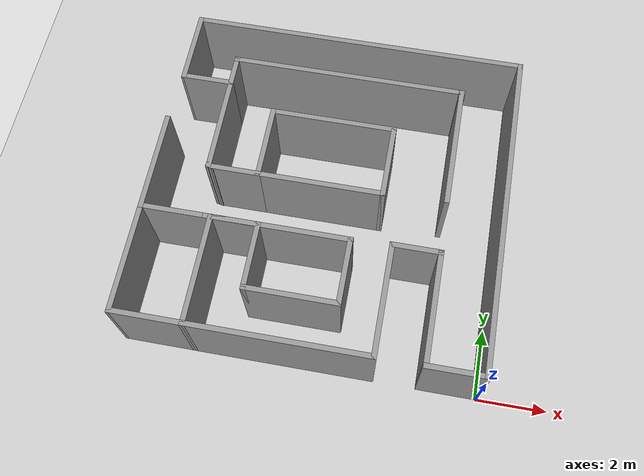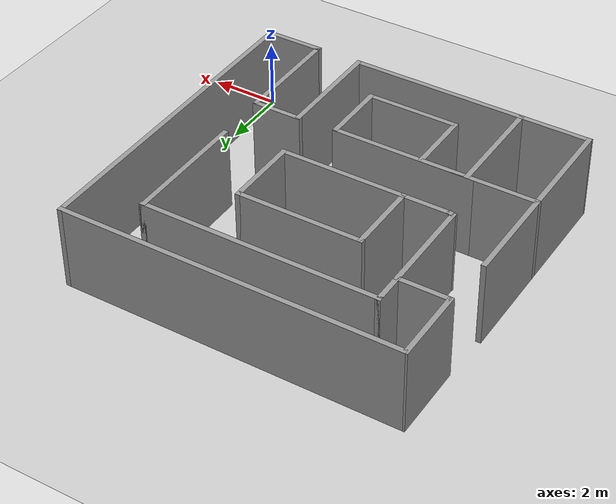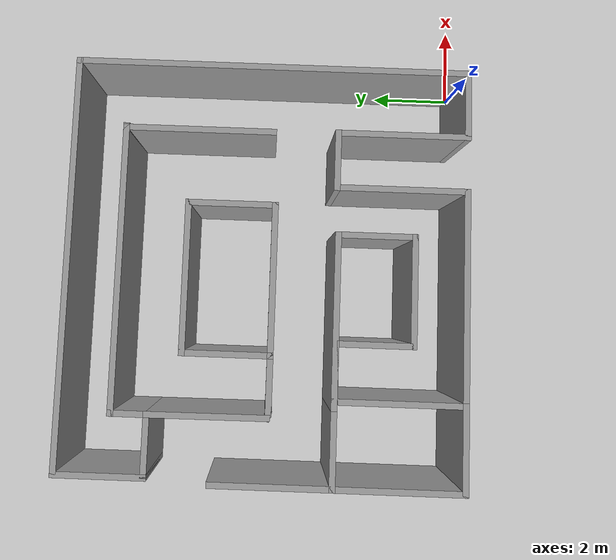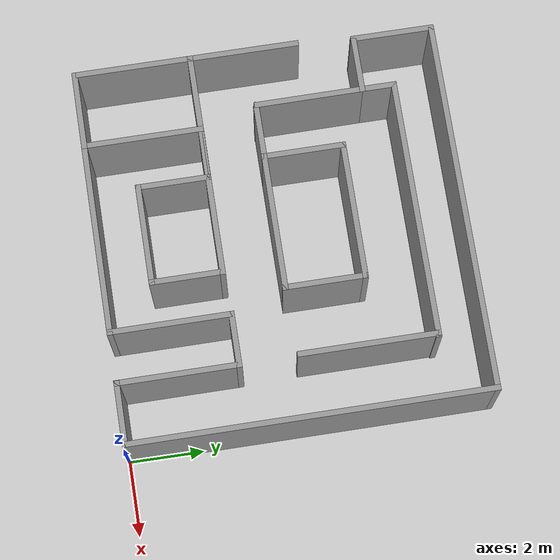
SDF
<sdf version="1.7">
 <world name="default">
  <model name="ground_plane">
   <static>1</static>
   <link name="link">
    <collision name="collision">
     <geometry><plane><normal>0 0 1</normal><size>100 100</size></plane></geometry>
     <surface>
      <contact><collide_bitmask>65535</collide_bitmask></contact>
      <friction><ode><mu>100</mu><mu2>50</mu2></ode></friction>
     </surface>
    </collision>
    <visual name="visual">
     <cast_shadows>0</cast_shadows>
     <geometry><plane><normal>0 0 1</normal><size>100 100</size></plane></geometry>
     <material>
      <script><uri>file://media/materials/scripts/gazebo.material</uri><name>Gazebo/Grey</name></script>
     </material>
    </visual>
   </link>
  </model>
  <light name="sun" type="directional">
   <pose>0 0 10 0 -0 0</pose>
   <diffuse>0.8 0.8 0.8 1</diffuse>
   <specular>0.2 0.2 0.2 1</specular>
   <attenuation>
    <range>1000</range>
    <constant>0.9</constant>
    <linear>0.01</linear>
    <quadratic>0.001</quadratic>
   </attenuation>
   <direction>-0.5 0.1 -0.9</direction>
   <spot><inner_angle>0</inner_angle><outer_angle>0</outer_angle><falloff>0</falloff></spot>
  </light>
  <scene><shadows>0</shadows><ambient>0.4 0.4 0.4 1</ambient><background>0.7 0.7 0.7 1</background></scene>
  <physics type="ode">
   <real_time_update_rate>1000</real_time_update_rate>
   <max_step_size>0.001</max_step_size>
   <real_time_factor>1</real_time_factor>
   <ode>
    <solver>
     <type>quick</type>
     <iters>150</iters>
     <precon_iters>0</precon_iters>
     <sor>1.4</sor>
     <use_dynamic_moi_rescaling>1</use_dynamic_moi_rescaling>
    </solver>
    <constraints>
     <cfm>1e-05</cfm>
     <erp>0.2</erp>
     <contact_max_correcting_vel>2000</contact_max_correcting_vel>
     <contact_surface_layer>0.01</contact_surface_layer>
    </constraints>
   </ode>
  </physics>
  <gravity>0 0 -9.8</gravity>
  <magnetic_field>6e-06 2.3e-05 -4.2e-05</magnetic_field>
  <atmosphere type="adiabatic"/>
  <audio><device>default</device></audio>
  <spherical_coordinates>
   <surface_model>EARTH_WGS84</surface_model>
   <latitude_deg>0</latitude_deg>
   <longitude_deg>0</longitude_deg>
   <elevation>0</elevation>
   <heading_deg>0</heading_deg>
  </spherical_coordinates>
  <model name="mazenew">
   <pose>-2.97954 4.8646 0 0 -0 0</pose>
   <link name="Wall_0">
    <collision name="Wall_0_Collision">
     <geometry><box><size>1.75 0.15 2.5</size></box></geometry>
     <pose>0 0 1.25 0 -0 0</pose>
    </collision>
    <visual name="Wall_0_Visual">
     <pose>0 0 1.25 0 -0 0</pose>
     <geometry><box><size>1.75 0.15 2.5</size></box></geometry>
     <material>
      <script><uri>file://media/materials/scripts/gazebo.material</uri><name>Gazebo/Grey</name></script>
      <ambient>1 1 1 1</ambient>
     </material>
     <meta><layer>0</layer></meta>
    </visual>
    <pose>2.13995 -4.79993 0 0 -0 0</pose>
   </link>
   <link name="Wall_10">
    <collision name="Wall_10_Collision">
     <geometry><box><size>1 0.15 2.5</size></box></geometry>
     <pose>0 0 1.25 0 -0 0</pose>
    </collision>
    <visual name="Wall_10_Visual">
     <pose>0 0 1.25 0 -0 0</pose>
     <geometry><box><size>1 0.15 2.5</size></box></geometry>
     <material>
      <script><uri>file://media/materials/scripts/gazebo.material</uri><name>Gazebo/Grey</name></script>
      <ambient>1 1 1 1</ambient>
     </material>
     <meta><layer>0</layer></meta>
    </visual>
    <pose>-5.56005 3.12507 0 0 -0 1.5708</pose>
   </link>
   <link name="Wall_12">
    <collision name="Wall_12_Collision">
     <geometry><box><size>7 0.15 2.5</size></box></geometry>
     <pose>0 0 1.25 0 -0 0</pose>
    </collision>
    <visual name="Wall_12_Visual">
     <pose>0 0 1.25 0 -0 0</pose>
     <geometry><box><size>7 0.15 2.5</size></box></geometry>
     <material>
      <script><uri>file://media/materials/scripts/gazebo.material</uri><name>Gazebo/Grey</name></script>
      <ambient>1 1 1 1</ambient>
     </material>
     <meta><layer>0</layer></meta>
    </visual>
    <pose>-2.13505 3.55007 0 0 -0 0</pose>
   </link>
   <link name="Wall_13">
    <collision name="Wall_13_Collision">
     <geometry><box><size>0.192361 0.15 2.5</size></box></geometry>
     <pose>0 0 1.25 0 -0 0</pose>
    </collision>
    <visual name="Wall_13_Visual">
     <pose>0 0 1.25 0 -0 0</pose>
     <geometry><box><size>0.192361 0.15 2.5</size></box></geometry>
     <material>
      <script><uri>file://media/materials/scripts/gazebo.material</uri><name>Gazebo/Grey</name></script>
      <ambient>1 1 1 1</ambient>
     </material>
     <meta><layer>0</layer></meta>
    </visual>
    <pose>1.31113 3.55007 0 0 -0 0</pose>
   </link>
   <link name="Wall_14">
    <collision name="Wall_14_Collision">
     <geometry><box><size>3.75 0.15 2.5</size></box></geometry>
     <pose>0 0 1.25 0 -0 0</pose>
    </collision>
    <visual name="Wall_14_Visual">
     <pose>0 0 1.25 0 -0 0</pose>
     <geometry><box><size>3.75 0.15 2.5</size></box></geometry>
     <material>
      <script><uri>file://media/materials/scripts/gazebo.material</uri><name>Gazebo/Grey</name></script>
      <ambient>1 1 1 1</ambient>
     </material>
     <meta><layer>0</layer></meta>
    </visual>
    <pose>1.30154 1.75007 0 0 -0 -1.5708</pose>
   </link>
   <link name="Wall_22">
    <collision name="Wall_22_Collision">
     <geometry><box><size>0.15 0.15 2.5</size></box></geometry>
     <pose>0 0 1.25 0 -0 0</pose>
    </collision>
    <visual name="Wall_22_Visual">
     <pose>0 0 1.25 0 -0 0</pose>
     <geometry><box><size>0.15 0.15 2.5</size></box></geometry>
     <material>
      <script><uri>file://media/materials/scripts/gazebo.material</uri><name>Gazebo/Grey</name></script>
      <ambient>1 1 1 1</ambient>
     </material>
     <meta><layer>0</layer></meta>
    </visual>
    <pose>1.33995 -4.79993 0 0 -0 0</pose>
   </link>
   <link name="Wall_24">
    <collision name="Wall_24_Collision">
     <geometry><box><size>3.28465 0.15 2.5</size></box></geometry>
     <pose>0 0 1.25 0 -0 0</pose>
    </collision>
    <visual name="Wall_24_Visual">
     <pose>0 0 1.25 0 -0 0</pose>
     <geometry><box><size>3.28465 0.15 2.5</size></box></geometry>
     <material>
      <script><uri>file://media/materials/scripts/gazebo.material</uri><name>Gazebo/Grey</name></script>
      <ambient>1 1 1 1</ambient>
     </material>
     <meta><layer>0</layer></meta>
    </visual>
    <pose>1.33995 -3.2326 0 0 -0 1.5708</pose>
   </link>
   <link name="Wall_26">
    <collision name="Wall_26_Collision">
     <geometry><box><size>1.5 0.15 2.5</size></box></geometry>
     <pose>0 0 1.25 0 -0 0</pose>
    </collision>
    <visual name="Wall_26_Visual">
     <pose>0 0 1.25 0 -0 0</pose>
     <geometry><box><size>1.5 0.15 2.5</size></box></geometry>
     <material>
      <script><uri>file://media/materials/scripts/gazebo.material</uri><name>Gazebo/Grey</name></script>
      <ambient>1 1 1 1</ambient>
     </material>
     <meta><layer>0</layer></meta>
    </visual>
    <pose>0.664948 -1.63451 0 0 -0 3.14159</pose>
   </link>
   <link name="Wall_27">
    <collision name="Wall_27_Collision">
     <geometry><box><size>3.28465 0.15 2.5</size></box></geometry>
     <pose>0 0 1.25 0 -0 0</pose>
    </collision>
    <visual name="Wall_27_Visual">
     <pose>0 0 1.25 0 -0 0</pose>
     <geometry><box><size>3.28465 0.15 2.5</size></box></geometry>
     <material>
      <script><uri>file://media/materials/scripts/gazebo.material</uri><name>Gazebo/Grey</name></script>
      <ambient>1 1 1 1</ambient>
     </material>
     <meta><layer>0</layer></meta>
    </visual>
    <pose>-0.010051 -3.2326 0 0 -0 -1.5708</pose>
   </link>
   <link name="Wall_28">
    <collision name="Wall_28_Collision">
     <geometry><box><size>5.25 0.15 2.5</size></box></geometry>
     <pose>0 0 1.25 0 -0 0</pose>
    </collision>
    <visual name="Wall_28_Visual">
     <pose>0 0 1.25 0 -0 0</pose>
     <geometry><box><size>5.25 0.15 2.5</size></box></geometry>
     <material>
      <script><uri>file://media/materials/scripts/gazebo.material</uri><name>Gazebo/Grey</name></script>
      <ambient>1 1 1 1</ambient>
     </material>
     <meta><layer>0</layer></meta>
    </visual>
    <pose>-2.56005 -4.79993 0 0 -0 3.14159</pose>
   </link>
   <link name="Wall_29">
    <collision name="Wall_29_Collision">
     <geometry><box><size>3.25 0.15 2.5</size></box></geometry>
     <pose>0 0 1.25 0 -0 0</pose>
    </collision>
    <visual name="Wall_29_Visual">
     <pose>0 0 1.25 0 -0 0</pose>
     <geometry><box><size>3.25 0.15 2.5</size></box></geometry>
     <material>
      <script><uri>file://media/materials/scripts/gazebo.material</uri><name>Gazebo/Grey</name></script>
      <ambient>1 1 1 1</ambient>
     </material>
     <meta><layer>0</layer></meta>
    </visual>
    <pose>-5.11005 -3.24993 0 0 -0 1.5708</pose>
   </link>
   <link name="Wall_30">
    <collision name="Wall_30_Collision">
     <geometry><box><size>1.5 0.15 2.5</size></box></geometry>
     <pose>0 0 1.25 0 -0 0</pose>
    </collision>
    <visual name="Wall_30_Visual">
     <pose>0 0 1.25 0 -0 0</pose>
     <geometry><box><size>1.5 0.15 2.5</size></box></geometry>
     <material>
      <script><uri>file://media/materials/scripts/gazebo.material</uri><name>Gazebo/Grey</name></script>
      <ambient>1 1 1 1</ambient>
     </material>
     <meta><layer>0</layer></meta>
    </visual>
    <pose>-4.43505 -1.69993 0 0 -0 0</pose>
   </link>
   <link name="Wall_31">
    <collision name="Wall_31_Collision">
     <geometry><box><size>2 0.15 2.5</size></box></geometry>
     <pose>0 0 1.25 0 -0 0</pose>
    </collision>
    <visual name="Wall_31_Visual">
     <pose>0 0 1.25 0 -0 0</pose>
     <geometry><box><size>2 0.15 2.5</size></box></geometry>
     <material>
      <script><uri>file://media/materials/scripts/gazebo.material</uri><name>Gazebo/Grey</name></script>
      <ambient>1 1 1 1</ambient>
     </material>
     <meta><layer>0</layer></meta>
    </visual>
    <pose>-3.76005 -2.62493 0 0 -0 -1.5708</pose>
   </link>
   <link name="Wall_32">
    <collision name="Wall_32_Collision">
     <geometry><box><size>2.75 0.15 2.5</size></box></geometry>
     <pose>0 0 1.25 0 -0 0</pose>
    </collision>
    <visual name="Wall_32_Visual">
     <pose>0 0 1.25 0 -0 0</pose>
     <geometry><box><size>2.75 0.15 2.5</size></box></geometry>
     <material>
      <script><uri>file://media/materials/scripts/gazebo.material</uri><name>Gazebo/Grey</name></script>
      <ambient>1 1 1 1</ambient>
     </material>
     <meta><layer>0</layer></meta>
    </visual>
    <pose>-2.46005 -3.54993 0 0 -0 0</pose>
   </link>
   <link name="Wall_33">
    <collision name="Wall_33_Collision">
     <geometry><box><size>1.97313 0.15 2.5</size></box></geometry>
     <pose>0 0 1.25 0 -0 0</pose>
    </collision>
    <visual name="Wall_33_Visual">
     <pose>0 0 1.25 0 -0 0</pose>
     <geometry><box><size>1.97313 0.15 2.5</size></box></geometry>
     <material>
      <script><uri>file://media/materials/scripts/gazebo.material</uri><name>Gazebo/Grey</name></script>
      <ambient>1 1 1 1</ambient>
     </material>
     <meta><layer>0</layer></meta>
    </visual>
    <pose>-1.16005 -2.63836 0 0 -0 1.5708</pose>
   </link>
   <link name="Wall_34">
    <collision name="Wall_34_Collision">
     <geometry><box><size>4.25 0.15 2.5</size></box></geometry>
     <pose>0 0 1.25 0 -0 0</pose>
    </collision>
    <visual name="Wall_34_Visual">
     <pose>0 0 1.25 0 -0 0</pose>
     <geometry><box><size>4.25 0.15 2.5</size></box></geometry>
     <material>
      <script><uri>file://media/materials/scripts/gazebo.material</uri><name>Gazebo/Grey</name></script>
      <ambient>1 1 1 1</ambient>
     </material>
     <meta><layer>0</layer></meta>
    </visual>
    <pose>-3.21005 -1.69604 0 0 -0 3.14159</pose>
   </link>
   <link name="Wall_36">
    <collision name="Wall_36_Collision">
     <geometry><box><size>2.25 0.15 2.5</size></box></geometry>
     <pose>0 0 1.25 0 -0 0</pose>
    </collision>
    <visual name="Wall_36_Visual">
     <pose>0 0 1.25 0 -0 0</pose>
     <geometry><box><size>2.25 0.15 2.5</size></box></geometry>
     <material>
      <script><uri>file://media/materials/scripts/gazebo.material</uri><name>Gazebo/Grey</name></script>
      <ambient>1 1 1 1</ambient>
     </material>
     <meta><layer>0</layer></meta>
    </visual>
    <pose>-0.500677 0.895147 0 0 -0 1.5708</pose>
   </link>
   <link name="Wall_37">
    <collision name="Wall_37_Collision">
     <geometry><box><size>3.75 0.15 2.5</size></box></geometry>
     <pose>0 0 1.25 0 -0 0</pose>
    </collision>
    <visual name="Wall_37_Visual">
     <pose>0 0 1.25 0 -0 0</pose>
     <geometry><box><size>3.75 0.15 2.5</size></box></geometry>
     <material>
      <script><uri>file://media/materials/scripts/gazebo.material</uri><name>Gazebo/Grey</name></script>
      <ambient>1 1 1 1</ambient>
     </material>
     <meta><layer>0</layer></meta>
    </visual>
    <pose>-2.30068 1.94515 0 0 -0 3.14159</pose>
   </link>
   <link name="Wall_38">
    <collision name="Wall_38_Collision">
     <geometry><box><size>2.25 0.15 2.5</size></box></geometry>
     <pose>0 0 1.25 0 -0 0</pose>
    </collision>
    <visual name="Wall_38_Visual">
     <pose>0 0 1.25 0 -0 0</pose>
     <geometry><box><size>2.25 0.15 2.5</size></box></geometry>
     <material>
      <script><uri>file://media/materials/scripts/gazebo.material</uri><name>Gazebo/Grey</name></script>
      <ambient>1 1 1 1</ambient>
     </material>
     <meta><layer>0</layer></meta>
    </visual>
    <pose>-4.10068 0.895147 0 0 -0 -1.5708</pose>
   </link>
   <link name="Wall_39">
    <collision name="Wall_39_Collision">
     <geometry><box><size>1.5 0.15 2.5</size></box></geometry>
     <pose>0 0 1.25 0 -0 0</pose>
    </collision>
    <visual name="Wall_39_Visual">
     <pose>0 0 1.25 0 -0 0</pose>
     <geometry><box><size>1.5 0.15 2.5</size></box></geometry>
     <material>
      <script><uri>file://media/materials/scripts/gazebo.material</uri><name>Gazebo/Grey</name></script>
      <ambient>1 1 1 1</ambient>
     </material>
     <meta><layer>0</layer></meta>
    </visual>
    <pose>-4.77568 -0.154853 0 0 -0 3.14159</pose>
   </link>
   <link name="Wall_4">
    <collision name="Wall_4_Collision">
     <geometry><box><size>9.75 0.15 2.5</size></box></geometry>
     <pose>0 0 1.25 0 -0 0</pose>
    </collision>
    <visual name="Wall_4_Visual">
     <pose>0 0 1.25 0 -0 0</pose>
     <geometry><box><size>9.75 0.15 2.5</size></box></geometry>
     <material>
      <script><uri>file://media/materials/scripts/gazebo.material</uri><name>Gazebo/Grey</name></script>
      <ambient>1 1 1 1</ambient>
     </material>
     <meta><layer>0</layer></meta>
    </visual>
    <pose>2.93995 7.2e-05 0 0 -0 1.5708</pose>
   </link>
   <link name="Wall_40">
    <collision name="Wall_40_Collision">
     <geometry><box><size>0.25 0.15 2.5</size></box></geometry>
     <pose>0 0 1.25 0 -0 0</pose>
    </collision>
    <visual name="Wall_40_Visual">
     <pose>0 0 1.25 0 -0 0</pose>
     <geometry><box><size>0.25 0.15 2.5</size></box></geometry>
     <material>
      <script><uri>file://media/materials/scripts/gazebo.material</uri><name>Gazebo/Grey</name></script>
      <ambient>1 1 1 1</ambient>
     </material>
     <meta><layer>0</layer></meta>
    </visual>
    <pose>-5.49897 -0.141912 0 0 -0 2.87979</pose>
   </link>
   <link name="Wall_41">
    <collision name="Wall_41_Collision">
     <geometry><box><size>2.97907 0.15 2.5</size></box></geometry>
     <pose>0 0 1.25 0 -0 0</pose>
    </collision>
    <visual name="Wall_41_Visual">
     <pose>0 0 1.25 0 -0 0</pose>
     <geometry><box><size>2.97907 0.15 2.5</size></box></geometry>
     <material>
      <script><uri>file://media/materials/scripts/gazebo.material</uri><name>Gazebo/Grey</name></script>
      <ambient>1 1 1 1</ambient>
     </material>
     <meta><layer>0</layer></meta>
    </visual>
    <pose>-5.55366 1.28555 0 0 -0 1.57531</pose>
   </link>
   <link name="Wall_43">
    <collision name="Wall_43_Collision">
     <geometry><box><size>3.75 0.15 2.5</size></box></geometry>
     <pose>0 0 1.25 0 -0 0</pose>
    </collision>
    <visual name="Wall_43_Visual">
     <pose>0 0 1.25 0 -0 0</pose>
     <geometry><box><size>3.75 0.15 2.5</size></box></geometry>
     <material>
      <script><uri>file://media/materials/scripts/gazebo.material</uri><name>Gazebo/Grey</name></script>
      <ambient>1 1 1 1</ambient>
     </material>
     <meta><layer>0</layer></meta>
    </visual>
    <pose>-2.30068 -0.154853 0 0 -0 0</pose>
   </link>
   <link name="Wall_45">
    <collision name="Wall_45_Collision">
     <geometry><box><size>2 0.15 2.5</size></box></geometry>
     <pose>0 0 1.25 0 -0 0</pose>
    </collision>
    <visual name="Wall_45_Visual">
     <pose>0 0 1.25 0 -0 0</pose>
     <geometry><box><size>2 0.15 2.5</size></box></geometry>
     <material>
      <script><uri>file://media/materials/scripts/gazebo.material</uri><name>Gazebo/Grey</name></script>
      <ambient>1 1 1 1</ambient>
     </material>
     <meta><layer>0</layer></meta>
    </visual>
    <pose>-6.18505 -1.69604 0 0 -0 3.14159</pose>
   </link>
   <link name="Wall_46">
    <collision name="Wall_46_Collision">
     <geometry><box><size>3.25 0.15 2.5</size></box></geometry>
     <pose>0 0 1.25 0 -0 0</pose>
    </collision>
    <visual name="Wall_46_Visual">
     <pose>0 0 1.25 0 -0 0</pose>
     <geometry><box><size>3.25 0.15 2.5</size></box></geometry>
     <material>
      <script><uri>file://media/materials/scripts/gazebo.material</uri><name>Gazebo/Grey</name></script>
      <ambient>1 1 1 1</ambient>
     </material>
     <meta><layer>0</layer></meta>
    </visual>
    <pose>-7.11005 -3.24604 0 0 -0 -1.5708</pose>
   </link>
   <link name="Wall_47">
    <collision name="Wall_47_Collision">
     <geometry><box><size>2.15 0.15 2.5</size></box></geometry>
     <pose>0 0 1.25 0 -0 0</pose>
    </collision>
    <visual name="Wall_47_Visual">
     <pose>0 0 1.25 0 -0 0</pose>
     <geometry><box><size>2.15 0.15 2.5</size></box></geometry>
     <material>
      <script><uri>file://media/materials/scripts/gazebo.material</uri><name>Gazebo/Grey</name></script>
      <ambient>1 1 1 1</ambient>
     </material>
     <meta><layer>0</layer></meta>
    </visual>
    <pose>-6.11005 -4.79798 0 0 -0 -0.001944</pose>
   </link>
   <link name="Wall_50">
    <collision name="Wall_50_Collision">
     <geometry><box><size>3 0.15 2.5</size></box></geometry>
     <pose>0 0 1.25 0 -0 0</pose>
    </collision>
    <visual name="Wall_50_Visual">
     <pose>0 0 1.25 0 -0 0</pose>
     <geometry><box><size>3 0.15 2.5</size></box></geometry>
     <material>
      <script><uri>file://media/materials/scripts/gazebo.material</uri><name>Gazebo/Grey</name></script>
      <ambient>1 1 1 1</ambient>
     </material>
     <meta><layer>0</layer></meta>
    </visual>
    <pose>-7.11005 -0.271039 0 0 -0 1.5708</pose>
   </link>
   <link name="Wall_7">
    <collision name="Wall_7_Collision">
     <geometry><box><size>10.0311 0.15 2.5</size></box></geometry>
     <pose>0 0 1.25 0 -0 0</pose>
    </collision>
    <visual name="Wall_7_Visual">
     <pose>0 0 1.25 0 -0 0</pose>
     <geometry><box><size>10.0311 0.15 2.5</size></box></geometry>
     <material>
      <script><uri>file://media/materials/scripts/gazebo.material</uri><name>Gazebo/Grey</name></script>
      <ambient>1 1 1 1</ambient>
     </material>
     <meta><layer>0</layer></meta>
    </visual>
    <pose>-2.00061 4.80007 0 0 -0 3.14159</pose>
   </link>
   <link name="Wall_8">
    <collision name="Wall_8_Collision">
     <geometry><box><size>2.25 0.15 2.5</size></box></geometry>
     <pose>0 0 1.25 0 -0 0</pose>
    </collision>
    <visual name="Wall_8_Visual">
     <pose>0 0 1.25 0 -0 0</pose>
     <geometry><box><size>2.25 0.15 2.5</size></box></geometry>
     <material>
      <script><uri>file://media/materials/scripts/gazebo.material</uri><name>Gazebo/Grey</name></script>
      <ambient>1 1 1 1</ambient>
     </material>
     <meta><layer>0</layer></meta>
    </visual>
    <pose>-7.00269 3.75007 0 0 -0 -1.5708</pose>
   </link>
   <link name="Wall_9">
    <collision name="Wall_9_Collision">
     <geometry><box><size>1.53111 0.15 2.5</size></box></geometry>
     <pose>0 0 1.25 0 -0 0</pose>
    </collision>
    <visual name="Wall_9_Visual">
     <pose>0 0 1.25 0 -0 0</pose>
     <geometry><box><size>1.53111 0.15 2.5</size></box></geometry>
     <material>
      <script><uri>file://media/materials/scripts/gazebo.material</uri><name>Gazebo/Grey</name></script>
      <ambient>1 1 1 1</ambient>
     </material>
     <meta><layer>0</layer></meta>
    </visual>
    <pose>-6.25061 2.70007 0 0 -0 0</pose>
   </link>
   <static>1</static>
  </model>
 </world>
</sdf>
